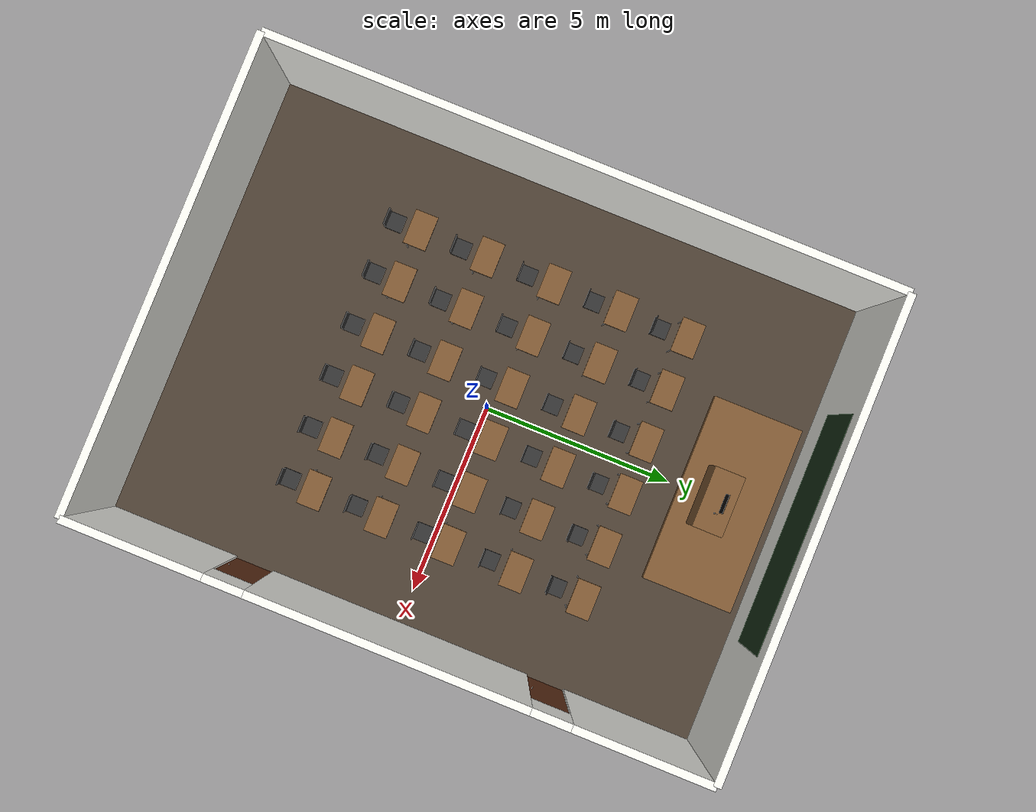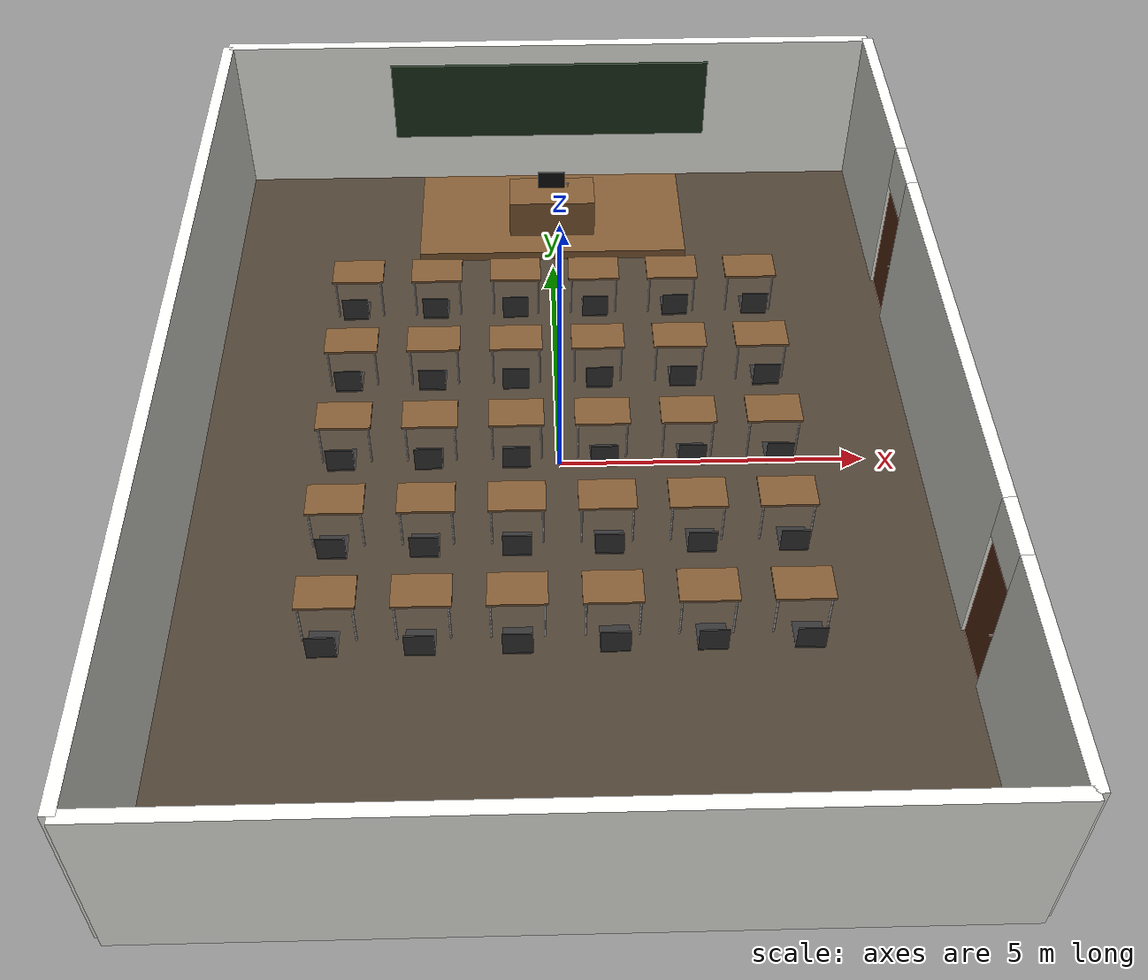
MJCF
<mujoco model="classroom_v15_clean">
    <compiler angle="degree" coordinate="local" inertiafromgeom="true"/>
    <asset>
        <material name="mat_floor" rgba="0.3 0.25 0.2 1"/>
        <material name="mat_wood" rgba="0.5 0.35 0.2 1"/>
        <material name="mat_metal" rgba="0.8 0.8 0.8 1"/>
        <material name="mat_chair" rgba="0.2 0.2 0.2 1"/>
        <material name="mat_wall" rgba="0.98 0.98 0.95 1"/>
        <material name="mat_door" rgba="0.4 0.2 0.1 1"/>
        <material name="mat_blackboard" rgba="0.1 0.2 0.1 1"/>
        <material name="mat_tech" rgba="0.05 0.05 0.05 1"/>
        <material name="glass_mat" rgba="0.7 0.85 1.0 0.2" specular="1" shininess="1"/>
    </asset>

    <worldbody>
            <light pos="0 3 7" dir="0 0 -1" diffuse="1.2 1.2 1.2" specular="0.3 0.3 0.3"/>
    <light pos="0 -3 7" dir="0 0 -1" diffuse="1.2 1.2 1.2" specular="0.3 0.3 0.3"/>
    <geom name="floor" type="plane" size="6 8 0.1" material="mat_floor"/>
    <geom name="r_wall_front" type="box" size="0.1 1.75 1.5" pos="6 6.25 1.5" material="mat_wall"/>
    <geom name="r_wall_mid" type="box" size="0.1 3.5 1.5" pos="6 0 1.5" material="mat_wall"/>
    <geom name="r_wall_back" type="box" size="0.1 1.75 1.5" pos="6 -6.25 1.5" material="mat_wall"/>
    <geom name="r_wall_top1" type="box" size="0.1 0.5 0.4" pos="6 4.0 2.6" material="mat_wall"/>
    <geom name="r_wall_top2" type="box" size="0.1 0.5 0.4" pos="6 -4.0 2.6" material="mat_wall"/>
    <body name="door_1" pos="5.98 4.0 1.1">
      <geom type="box" size="0.03 0.495 1.1" material="mat_door"/>
      <geom type="cylinder" size="0.01 0.04" pos="-0.04 -0.4 0" quat="0.707 0 0.707 0" material="mat_metal"/>
    </body>
    <body name="door_2" pos="5.98 -4.0 1.1">
      <geom type="box" size="0.03 0.495 1.1" material="mat_door"/>
      <geom type="cylinder" size="0.01 0.04" pos="-0.04 -0.4 0" quat="0.707 0 0.707 0" material="mat_metal"/>
    </body>
    <geom name="wall_left" type="box" size="0.1 8 1.5" pos="-6 0 1.5" material="mat_wall"/>
    <geom name="wall_back" type="box" size="6 0.1 1.5" pos="0 -8 1.5" material="mat_wall"/>
    <geom name="wall_front" type="box" size="6 0.1 1.5" pos="0 8 1.5" material="mat_wall"/>
    <geom name="blackboard" type="box" size="3 0.02 0.8" pos="0 7.89 1.8" material="mat_blackboard"/>
    <geom name="podium" type="box" size="2.5 1.2 0.1" pos="0 6.5 0.05" material="mat_wood"/>
    <body pos="0 6.2 0.1">
      <geom type="box" size="0.8 0.4 0.4" pos="0 0 0.4" material="mat_wood"/>
      <geom type="box" size="0.25 0.01 0.18" pos="0 0.1 0.98" material="mat_tech"/>
      <geom type="capsule" size="0.005 0.1" pos="0.3 0 0.9" quat="0.92 0.38 0 0" material="mat_metal"/>
      <geom type="sphere" size="0.02" pos="0.3 -0.05 1.0" material="mat_tech"/>
    </body>

        <body name="s_0_0" pos="-3.5 4.0 0">
            <geom type="box" size="0.45 0.3 0.02" pos="0 0 0.82" material="mat_wood"/>
            <geom type="cylinder" size="0.015 0.4" pos="-0.4 -0.25 0.4" material="mat_metal"/>
            <geom type="cylinder" size="0.015 0.4" pos="0.4 -0.25 0.4" material="mat_metal"/>
            <body pos="0 -0.7 0">
                <geom type="box" size="0.22 0.22 0.02" pos="0 0 0.52" material="mat_chair"/>
                <geom type="box" size="0.22 0.01 0.22" pos="0 -0.21 0.74" material="mat_chair"/>
            </body>
        </body>
        <body name="s_0_1" pos="-2.1 4.0 0">
            <geom type="box" size="0.45 0.3 0.02" pos="0 0 0.82" material="mat_wood"/>
            <geom type="cylinder" size="0.015 0.4" pos="-0.4 -0.25 0.4" material="mat_metal"/>
            <geom type="cylinder" size="0.015 0.4" pos="0.4 -0.25 0.4" material="mat_metal"/>
            <body pos="0 -0.7 0">
                <geom type="box" size="0.22 0.22 0.02" pos="0 0 0.52" material="mat_chair"/>
                <geom type="box" size="0.22 0.01 0.22" pos="0 -0.21 0.74" material="mat_chair"/>
            </body>
        </body>
        <body name="s_0_2" pos="-0.7 4.0 0">
            <geom type="box" size="0.45 0.3 0.02" pos="0 0 0.82" material="mat_wood"/>
            <geom type="cylinder" size="0.015 0.4" pos="-0.4 -0.25 0.4" material="mat_metal"/>
            <geom type="cylinder" size="0.015 0.4" pos="0.4 -0.25 0.4" material="mat_metal"/>
            <body pos="0 -0.7 0">
                <geom type="box" size="0.22 0.22 0.02" pos="0 0 0.52" material="mat_chair"/>
                <geom type="box" size="0.22 0.01 0.22" pos="0 -0.21 0.74" material="mat_chair"/>
            </body>
        </body>
        <body name="s_0_3" pos="0.7 4.0 0">
            <geom type="box" size="0.45 0.3 0.02" pos="0 0 0.82" material="mat_wood"/>
            <geom type="cylinder" size="0.015 0.4" pos="-0.4 -0.25 0.4" material="mat_metal"/>
            <geom type="cylinder" size="0.015 0.4" pos="0.4 -0.25 0.4" material="mat_metal"/>
            <body pos="0 -0.7 0">
                <geom type="box" size="0.22 0.22 0.02" pos="0 0 0.52" material="mat_chair"/>
                <geom type="box" size="0.22 0.01 0.22" pos="0 -0.21 0.74" material="mat_chair"/>
            </body>
        </body>
        <body name="s_0_4" pos="2.1 4.0 0">
            <geom type="box" size="0.45 0.3 0.02" pos="0 0 0.82" material="mat_wood"/>
            <geom type="cylinder" size="0.015 0.4" pos="-0.4 -0.25 0.4" material="mat_metal"/>
            <geom type="cylinder" size="0.015 0.4" pos="0.4 -0.25 0.4" material="mat_metal"/>
            <body pos="0 -0.7 0">
                <geom type="box" size="0.22 0.22 0.02" pos="0 0 0.52" material="mat_chair"/>
                <geom type="box" size="0.22 0.01 0.22" pos="0 -0.21 0.74" material="mat_chair"/>
            </body>
        </body>
        <body name="s_0_5" pos="3.5 4.0 0">
            <geom type="box" size="0.45 0.3 0.02" pos="0 0 0.82" material="mat_wood"/>
            <geom type="cylinder" size="0.015 0.4" pos="-0.4 -0.25 0.4" material="mat_metal"/>
            <geom type="cylinder" size="0.015 0.4" pos="0.4 -0.25 0.4" material="mat_metal"/>
            <body pos="0 -0.7 0">
                <geom type="box" size="0.22 0.22 0.02" pos="0 0 0.52" material="mat_chair"/>
                <geom type="box" size="0.22 0.01 0.22" pos="0 -0.21 0.74" material="mat_chair"/>
            </body>
        </body>
        <body name="s_1_0" pos="-3.5 2.2 0">
            <geom type="box" size="0.45 0.3 0.02" pos="0 0 0.82" material="mat_wood"/>
            <geom type="cylinder" size="0.015 0.4" pos="-0.4 -0.25 0.4" material="mat_metal"/>
            <geom type="cylinder" size="0.015 0.4" pos="0.4 -0.25 0.4" material="mat_metal"/>
            <body pos="0 -0.7 0">
                <geom type="box" size="0.22 0.22 0.02" pos="0 0 0.52" material="mat_chair"/>
                <geom type="box" size="0.22 0.01 0.22" pos="0 -0.21 0.74" material="mat_chair"/>
            </body>
        </body>
        <body name="s_1_1" pos="-2.1 2.2 0">
            <geom type="box" size="0.45 0.3 0.02" pos="0 0 0.82" material="mat_wood"/>
            <geom type="cylinder" size="0.015 0.4" pos="-0.4 -0.25 0.4" material="mat_metal"/>
            <geom type="cylinder" size="0.015 0.4" pos="0.4 -0.25 0.4" material="mat_metal"/>
            <body pos="0 -0.7 0">
                <geom type="box" size="0.22 0.22 0.02" pos="0 0 0.52" material="mat_chair"/>
                <geom type="box" size="0.22 0.01 0.22" pos="0 -0.21 0.74" material="mat_chair"/>
            </body>
        </body>
        <body name="s_1_2" pos="-0.7 2.2 0">
            <geom type="box" size="0.45 0.3 0.02" pos="0 0 0.82" material="mat_wood"/>
            <geom type="cylinder" size="0.015 0.4" pos="-0.4 -0.25 0.4" material="mat_metal"/>
            <geom type="cylinder" size="0.015 0.4" pos="0.4 -0.25 0.4" material="mat_metal"/>
            <body pos="0 -0.7 0">
                <geom type="box" size="0.22 0.22 0.02" pos="0 0 0.52" material="mat_chair"/>
                <geom type="box" size="0.22 0.01 0.22" pos="0 -0.21 0.74" material="mat_chair"/>
            </body>
        </body>
        <body name="s_1_3" pos="0.7 2.2 0">
            <geom type="box" size="0.45 0.3 0.02" pos="0 0 0.82" material="mat_wood"/>
            <geom type="cylinder" size="0.015 0.4" pos="-0.4 -0.25 0.4" material="mat_metal"/>
            <geom type="cylinder" size="0.015 0.4" pos="0.4 -0.25 0.4" material="mat_metal"/>
            <body pos="0 -0.7 0">
                <geom type="box" size="0.22 0.22 0.02" pos="0 0 0.52" material="mat_chair"/>
                <geom type="box" size="0.22 0.01 0.22" pos="0 -0.21 0.74" material="mat_chair"/>
            </body>
        </body>
        <body name="s_1_4" pos="2.1 2.2 0">
            <geom type="box" size="0.45 0.3 0.02" pos="0 0 0.82" material="mat_wood"/>
            <geom type="cylinder" size="0.015 0.4" pos="-0.4 -0.25 0.4" material="mat_metal"/>
            <geom type="cylinder" size="0.015 0.4" pos="0.4 -0.25 0.4" material="mat_metal"/>
            <body pos="0 -0.7 0">
                <geom type="box" size="0.22 0.22 0.02" pos="0 0 0.52" material="mat_chair"/>
                <geom type="box" size="0.22 0.01 0.22" pos="0 -0.21 0.74" material="mat_chair"/>
            </body>
        </body>
        <body name="s_1_5" pos="3.5 2.2 0">
            <geom type="box" size="0.45 0.3 0.02" pos="0 0 0.82" material="mat_wood"/>
            <geom type="cylinder" size="0.015 0.4" pos="-0.4 -0.25 0.4" material="mat_metal"/>
            <geom type="cylinder" size="0.015 0.4" pos="0.4 -0.25 0.4" material="mat_metal"/>
            <body pos="0 -0.7 0">
                <geom type="box" size="0.22 0.22 0.02" pos="0 0 0.52" material="mat_chair"/>
                <geom type="box" size="0.22 0.01 0.22" pos="0 -0.21 0.74" material="mat_chair"/>
            </body>
        </body>
        <body name="s_2_0" pos="-3.5 0.4 0">
            <geom type="box" size="0.45 0.3 0.02" pos="0 0 0.82" material="mat_wood"/>
            <geom type="cylinder" size="0.015 0.4" pos="-0.4 -0.25 0.4" material="mat_metal"/>
            <geom type="cylinder" size="0.015 0.4" pos="0.4 -0.25 0.4" material="mat_metal"/>
            <body pos="0 -0.7 0">
                <geom type="box" size="0.22 0.22 0.02" pos="0 0 0.52" material="mat_chair"/>
                <geom type="box" size="0.22 0.01 0.22" pos="0 -0.21 0.74" material="mat_chair"/>
            </body>
        </body>
        <body name="s_2_1" pos="-2.1 0.4 0">
            <geom type="box" size="0.45 0.3 0.02" pos="0 0 0.82" material="mat_wood"/>
            <geom type="cylinder" size="0.015 0.4" pos="-0.4 -0.25 0.4" material="mat_metal"/>
            <geom type="cylinder" size="0.015 0.4" pos="0.4 -0.25 0.4" material="mat_metal"/>
            <body pos="0 -0.7 0">
                <geom type="box" size="0.22 0.22 0.02" pos="0 0 0.52" material="mat_chair"/>
                <geom type="box" size="0.22 0.01 0.22" pos="0 -0.21 0.74" material="mat_chair"/>
            </body>
        </body>
        <body name="s_2_2" pos="-0.7 0.4 0">
            <geom type="box" size="0.45 0.3 0.02" pos="0 0 0.82" material="mat_wood"/>
            <geom type="cylinder" size="0.015 0.4" pos="-0.4 -0.25 0.4" material="mat_metal"/>
            <geom type="cylinder" size="0.015 0.4" pos="0.4 -0.25 0.4" material="mat_metal"/>
            <body pos="0 -0.7 0">
                <geom type="box" size="0.22 0.22 0.02" pos="0 0 0.52" material="mat_chair"/>
                <geom type="box" size="0.22 0.01 0.22" pos="0 -0.21 0.74" material="mat_chair"/>
            </body>
        </body>
        <body name="s_2_3" pos="0.7 0.4 0">
            <geom type="box" size="0.45 0.3 0.02" pos="0 0 0.82" material="mat_wood"/>
            <geom type="cylinder" size="0.015 0.4" pos="-0.4 -0.25 0.4" material="mat_metal"/>
            <geom type="cylinder" size="0.015 0.4" pos="0.4 -0.25 0.4" material="mat_metal"/>
            <body pos="0 -0.7 0">
                <geom type="box" size="0.22 0.22 0.02" pos="0 0 0.52" material="mat_chair"/>
                <geom type="box" size="0.22 0.01 0.22" pos="0 -0.21 0.74" material="mat_chair"/>
            </body>
        </body>
        <body name="s_2_4" pos="2.1 0.4 0">
            <geom type="box" size="0.45 0.3 0.02" pos="0 0 0.82" material="mat_wood"/>
            <geom type="cylinder" size="0.015 0.4" pos="-0.4 -0.25 0.4" material="mat_metal"/>
            <geom type="cylinder" size="0.015 0.4" pos="0.4 -0.25 0.4" material="mat_metal"/>
            <body pos="0 -0.7 0">
                <geom type="box" size="0.22 0.22 0.02" pos="0 0 0.52" material="mat_chair"/>
                <geom type="box" size="0.22 0.01 0.22" pos="0 -0.21 0.74" material="mat_chair"/>
            </body>
        </body>
        <body name="s_2_5" pos="3.5 0.4 0">
            <geom type="box" size="0.45 0.3 0.02" pos="0 0 0.82" material="mat_wood"/>
            <geom type="cylinder" size="0.015 0.4" pos="-0.4 -0.25 0.4" material="mat_metal"/>
            <geom type="cylinder" size="0.015 0.4" pos="0.4 -0.25 0.4" material="mat_metal"/>
            <body pos="0 -0.7 0">
                <geom type="box" size="0.22 0.22 0.02" pos="0 0 0.52" material="mat_chair"/>
                <geom type="box" size="0.22 0.01 0.22" pos="0 -0.21 0.74" material="mat_chair"/>
            </body>
        </body>
        <body name="s_3_0" pos="-3.5 -1.4 0">
            <geom type="box" size="0.45 0.3 0.02" pos="0 0 0.82" material="mat_wood"/>
            <geom type="cylinder" size="0.015 0.4" pos="-0.4 -0.25 0.4" material="mat_metal"/>
            <geom type="cylinder" size="0.015 0.4" pos="0.4 -0.25 0.4" material="mat_metal"/>
            <body pos="0 -0.7 0">
                <geom type="box" size="0.22 0.22 0.02" pos="0 0 0.52" material="mat_chair"/>
                <geom type="box" size="0.22 0.01 0.22" pos="0 -0.21 0.74" material="mat_chair"/>
            </body>
        </body>
        <body name="s_3_1" pos="-2.1 -1.4 0">
            <geom type="box" size="0.45 0.3 0.02" pos="0 0 0.82" material="mat_wood"/>
            <geom type="cylinder" size="0.015 0.4" pos="-0.4 -0.25 0.4" material="mat_metal"/>
            <geom type="cylinder" size="0.015 0.4" pos="0.4 -0.25 0.4" material="mat_metal"/>
            <body pos="0 -0.7 0">
                <geom type="box" size="0.22 0.22 0.02" pos="0 0 0.52" material="mat_chair"/>
                <geom type="box" size="0.22 0.01 0.22" pos="0 -0.21 0.74" material="mat_chair"/>
            </body>
        </body>
        <body name="s_3_2" pos="-0.7 -1.4 0">
            <geom type="box" size="0.45 0.3 0.02" pos="0 0 0.82" material="mat_wood"/>
            <geom type="cylinder" size="0.015 0.4" pos="-0.4 -0.25 0.4" material="mat_metal"/>
            <geom type="cylinder" size="0.015 0.4" pos="0.4 -0.25 0.4" material="mat_metal"/>
            <body pos="0 -0.7 0">
                <geom type="box" size="0.22 0.22 0.02" pos="0 0 0.52" material="mat_chair"/>
                <geom type="box" size="0.22 0.01 0.22" pos="0 -0.21 0.74" material="mat_chair"/>
            </body>
        </body>
        <body name="s_3_3" pos="0.7 -1.4 0">
            <geom type="box" size="0.45 0.3 0.02" pos="0 0 0.82" material="mat_wood"/>
            <geom type="cylinder" size="0.015 0.4" pos="-0.4 -0.25 0.4" material="mat_metal"/>
            <geom type="cylinder" size="0.015 0.4" pos="0.4 -0.25 0.4" material="mat_metal"/>
            <body pos="0 -0.7 0">
                <geom type="box" size="0.22 0.22 0.02" pos="0 0 0.52" material="mat_chair"/>
                <geom type="box" size="0.22 0.01 0.22" pos="0 -0.21 0.74" material="mat_chair"/>
            </body>
        </body>
        <body name="s_3_4" pos="2.1 -1.4 0">
            <geom type="box" size="0.45 0.3 0.02" pos="0 0 0.82" material="mat_wood"/>
            <geom type="cylinder" size="0.015 0.4" pos="-0.4 -0.25 0.4" material="mat_metal"/>
            <geom type="cylinder" size="0.015 0.4" pos="0.4 -0.25 0.4" material="mat_metal"/>
            <body pos="0 -0.7 0">
                <geom type="box" size="0.22 0.22 0.02" pos="0 0 0.52" material="mat_chair"/>
                <geom type="box" size="0.22 0.01 0.22" pos="0 -0.21 0.74" material="mat_chair"/>
            </body>
        </body>
        <body name="s_3_5" pos="3.5 -1.4 0">
            <geom type="box" size="0.45 0.3 0.02" pos="0 0 0.82" material="mat_wood"/>
            <geom type="cylinder" size="0.015 0.4" pos="-0.4 -0.25 0.4" material="mat_metal"/>
            <geom type="cylinder" size="0.015 0.4" pos="0.4 -0.25 0.4" material="mat_metal"/>
            <body pos="0 -0.7 0">
                <geom type="box" size="0.22 0.22 0.02" pos="0 0 0.52" material="mat_chair"/>
                <geom type="box" size="0.22 0.01 0.22" pos="0 -0.21 0.74" material="mat_chair"/>
            </body>
        </body>
        <body name="s_4_0" pos="-3.5 -3.2 0">
            <geom type="box" size="0.45 0.3 0.02" pos="0 0 0.82" material="mat_wood"/>
            <geom type="cylinder" size="0.015 0.4" pos="-0.4 -0.25 0.4" material="mat_metal"/>
            <geom type="cylinder" size="0.015 0.4" pos="0.4 -0.25 0.4" material="mat_metal"/>
            <body pos="0 -0.7 0">
                <geom type="box" size="0.22 0.22 0.02" pos="0 0 0.52" material="mat_chair"/>
                <geom type="box" size="0.22 0.01 0.22" pos="0 -0.21 0.74" material="mat_chair"/>
            </body>
        </body>
        <body name="s_4_1" pos="-2.1 -3.2 0">
            <geom type="box" size="0.45 0.3 0.02" pos="0 0 0.82" material="mat_wood"/>
            <geom type="cylinder" size="0.015 0.4" pos="-0.4 -0.25 0.4" material="mat_metal"/>
            <geom type="cylinder" size="0.015 0.4" pos="0.4 -0.25 0.4" material="mat_metal"/>
            <body pos="0 -0.7 0">
                <geom type="box" size="0.22 0.22 0.02" pos="0 0 0.52" material="mat_chair"/>
                <geom type="box" size="0.22 0.01 0.22" pos="0 -0.21 0.74" material="mat_chair"/>
            </body>
        </body>
        <body name="s_4_2" pos="-0.7 -3.2 0">
            <geom type="box" size="0.45 0.3 0.02" pos="0 0 0.82" material="mat_wood"/>
            <geom type="cylinder" size="0.015 0.4" pos="-0.4 -0.25 0.4" material="mat_metal"/>
            <geom type="cylinder" size="0.015 0.4" pos="0.4 -0.25 0.4" material="mat_metal"/>
            <body pos="0 -0.7 0">
                <geom type="box" size="0.22 0.22 0.02" pos="0 0 0.52" material="mat_chair"/>
                <geom type="box" size="0.22 0.01 0.22" pos="0 -0.21 0.74" material="mat_chair"/>
            </body>
        </body>
        <body name="s_4_3" pos="0.7 -3.2 0">
            <geom type="box" size="0.45 0.3 0.02" pos="0 0 0.82" material="mat_wood"/>
            <geom type="cylinder" size="0.015 0.4" pos="-0.4 -0.25 0.4" material="mat_metal"/>
            <geom type="cylinder" size="0.015 0.4" pos="0.4 -0.25 0.4" material="mat_metal"/>
            <body pos="0 -0.7 0">
                <geom type="box" size="0.22 0.22 0.02" pos="0 0 0.52" material="mat_chair"/>
                <geom type="box" size="0.22 0.01 0.22" pos="0 -0.21 0.74" material="mat_chair"/>
            </body>
        </body>
        <body name="s_4_4" pos="2.1 -3.2 0">
            <geom type="box" size="0.45 0.3 0.02" pos="0 0 0.82" material="mat_wood"/>
            <geom type="cylinder" size="0.015 0.4" pos="-0.4 -0.25 0.4" material="mat_metal"/>
            <geom type="cylinder" size="0.015 0.4" pos="0.4 -0.25 0.4" material="mat_metal"/>
            <body pos="0 -0.7 0">
                <geom type="box" size="0.22 0.22 0.02" pos="0 0 0.52" material="mat_chair"/>
                <geom type="box" size="0.22 0.01 0.22" pos="0 -0.21 0.74" material="mat_chair"/>
            </body>
        </body>
        <body name="s_4_5" pos="3.5 -3.2 0">
            <geom type="box" size="0.45 0.3 0.02" pos="0 0 0.82" material="mat_wood"/>
            <geom type="cylinder" size="0.015 0.4" pos="-0.4 -0.25 0.4" material="mat_metal"/>
            <geom type="cylinder" size="0.015 0.4" pos="0.4 -0.25 0.4" material="mat_metal"/>
            <body pos="0 -0.7 0">
                <geom type="box" size="0.22 0.22 0.02" pos="0 0 0.52" material="mat_chair"/>
                <geom type="box" size="0.22 0.01 0.22" pos="0 -0.21 0.74" material="mat_chair"/>
            </body>
        </body>
    </worldbody>
</mujoco>
